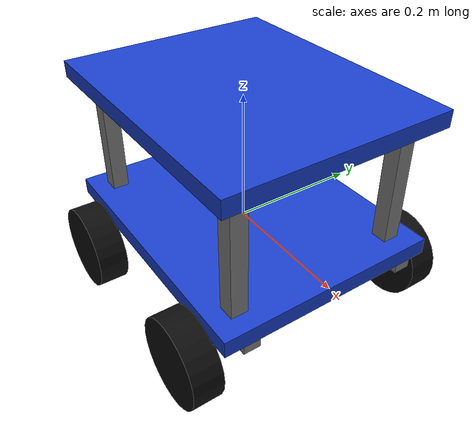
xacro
<?xml version="1.0"?>
<robot xmlns:xacro="http://www.ros.org/wiki/xacro" name="agv">

  <!-- ==================== MATERIALS ==================== -->
  <material name="blue">
    <color rgba="0.1 0.25 0.8 1.0"/>
  </material>

  <material name="black">
    <color rgba="0.05 0.05 0.05 1.0"/>
  </material>

  <material name="grey">
    <color rgba="0.5 0.5 0.5 1.0"/>
  </material>

  <!-- ==================== BASE LINK ==================== -->
  <!--
       Gom cac thanh khung duoi va 4 tru vao base_link.
       Khong tao rieng lower_rail, lower_cross hoac support_post.
       Hinh dang khung va tru van duoc giu bang cac khoi box.
  -->

  <link name="base_link">

    <!-- Tam san duoi -->
    <visual>
      <origin xyz="0 0 0" rpy="0 0 0"/>
      <geometry>
        <box size="0.42 0.34 0.025"/>
      </geometry>
      <material name="blue"/>
    </visual>

    <collision>
      <origin xyz="0 0 0" rpy="0 0 0"/>
      <geometry>
        <box size="0.42 0.34 0.025"/>
      </geometry>
    </collision>

    <!-- Thanh khung duoi ben trai -->
    <visual>
      <origin xyz="0 0.13 -0.0125" rpy="0 0 0"/>
      <geometry>
        <box size="0.42 0.025 0.025"/>
      </geometry>
      <material name="grey"/>
    </visual>

    <collision>
      <origin xyz="0 0.13 -0.0125" rpy="0 0 0"/>
      <geometry>
        <box size="0.42 0.025 0.025"/>
      </geometry>
    </collision>

    <!-- Thanh khung duoi ben phai -->
    <visual>
      <origin xyz="0 -0.13 -0.0125" rpy="0 0 0"/>
      <geometry>
        <box size="0.42 0.025 0.025"/>
      </geometry>
      <material name="grey"/>
    </visual>

    <collision>
      <origin xyz="0 -0.13 -0.0125" rpy="0 0 0"/>
      <geometry>
        <box size="0.42 0.025 0.025"/>
      </geometry>
    </collision>

    <!-- Thanh ngang khung duoi phia truoc -->
    <visual>
      <origin xyz="0.17 0 -0.0125" rpy="0 0 0"/>
      <geometry>
        <box size="0.025 0.34 0.025"/>
      </geometry>
      <material name="grey"/>
    </visual>

    <collision>
      <origin xyz="0.17 0 -0.0125" rpy="0 0 0"/>
      <geometry>
        <box size="0.025 0.34 0.025"/>
      </geometry>
    </collision>

    <!-- Thanh ngang khung duoi phia sau -->
    <visual>
      <origin xyz="-0.17 0 -0.0125" rpy="0 0 0"/>
      <geometry>
        <box size="0.025 0.34 0.025"/>
      </geometry>
      <material name="grey"/>
    </visual>

    <collision>
      <origin xyz="-0.17 0 -0.0125" rpy="0 0 0"/>
      <geometry>
        <box size="0.025 0.34 0.025"/>
      </geometry>
    </collision>

    <!-- Tru dung goc truoc ben trai -->
    <visual>
      <origin xyz="0.17 0.13 0.1025" rpy="0 0 0"/>
      <geometry>
        <box size="0.025 0.025 0.18"/>
      </geometry>
      <material name="grey"/>
    </visual>

    <collision>
      <origin xyz="0.17 0.13 0.1025" rpy="0 0 0"/>
      <geometry>
        <box size="0.025 0.025 0.18"/>
      </geometry>
    </collision>

    <!-- Tru dung goc truoc ben phai -->
    <visual>
      <origin xyz="0.17 -0.13 0.1025" rpy="0 0 0"/>
      <geometry>
        <box size="0.025 0.025 0.18"/>
      </geometry>
      <material name="grey"/>
    </visual>

    <collision>
      <origin xyz="0.17 -0.13 0.1025" rpy="0 0 0"/>
      <geometry>
        <box size="0.025 0.025 0.18"/>
      </geometry>
    </collision>

    <!-- Tru dung goc sau ben trai -->
    <visual>
      <origin xyz="-0.17 0.13 0.1025" rpy="0 0 0"/>
      <geometry>
        <box size="0.025 0.025 0.18"/>
      </geometry>
      <material name="grey"/>
    </visual>

    <collision>
      <origin xyz="-0.17 0.13 0.1025" rpy="0 0 0"/>
      <geometry>
        <box size="0.025 0.025 0.18"/>
      </geometry>
    </collision>

    <!-- Tru dung goc sau ben phai -->
    <visual>
      <origin xyz="-0.17 -0.13 0.1025" rpy="0 0 0"/>
      <geometry>
        <box size="0.025 0.025 0.18"/>
      </geometry>
      <material name="grey"/>
    </visual>

    <collision>
      <origin xyz="-0.17 -0.13 0.1025" rpy="0 0 0"/>
      <geometry>
        <box size="0.025 0.025 0.18"/>
      </geometry>
    </collision>

    <!-- Khoi luong va mo-men quan tinh cua khung duoi -->
    <inertial>
      <origin xyz="0 0 0.02" rpy="0 0 0"/>
      <mass value="5.6"/>
      <inertia
        ixx="0.055"
        ixy="0.0"
        ixz="0.0"
        iyy="0.075"
        iyz="0.0"
        izz="0.12"/>
    </inertial>

  </link>

  <!-- ==================== UPPER DECK ==================== -->
  <!-- San tren duoc giu thanh mot link rieng -->

  <link name="upper_deck">

    <visual>
      <origin xyz="0 0 0" rpy="0 0 0"/>
      <geometry>
        <box size="0.42 0.34 0.025"/>
      </geometry>
      <material name="blue"/>
    </visual>

    <collision>
      <origin xyz="0 0 0" rpy="0 0 0"/>
      <geometry>
        <box size="0.42 0.34 0.025"/>
      </geometry>
    </collision>

    <inertial>
      <origin xyz="0 0 0" rpy="0 0 0"/>
      <mass value="2.0"/>
      <inertia
        ixx="0.019"
        ixy="0.0"
        ixz="0.0"
        iyy="0.031"
        iyz="0.0"
        izz="0.045"/>
    </inertial>

  </link>

  <!-- Gan san tren vao khung duoi -->
  <joint name="upper_deck_joint" type="fixed">
    <parent link="base_link"/>
    <child link="upper_deck"/>
    <origin xyz="0 0 0.205" rpy="0 0 0"/>
  </joint>

  <!-- ==================== WHEEL MACRO ==================== -->

  <xacro:macro name="wheel" params="name x y side">

    <link name="${name}_wheel">
      <visual>
        <origin xyz="0 0 0" rpy="0 0 0"/>
        <geometry>
          <cylinder radius="0.065" length="0.045"/>
        </geometry>
        <material name="black"/>
      </visual>

      <collision>
        <origin xyz="0 0 0" rpy="0 0 0"/>
        <geometry>
          <cylinder radius="0.065" length="0.045"/>
        </geometry>
      </collision>

      <inertial>
        <origin xyz="0 0 0" rpy="0 0 0"/>
        <mass value="0.5"/>
        <inertia
          ixx="0.0012"
          ixy="0.0"
          ixz="0.0"
          iyy="0.0012"
          iyz="0.0"
          izz="0.0012"/>
      </inertial>
    </link>

    <joint name="${name}_wheel_joint" type="continuous">
      <parent link="base_link"/>
      <child link="${name}_wheel"/>
      <origin xyz="${x} ${y} -0.065"
              rpy="${side == 'left' and '-1.57079632679' or '1.57079632679'} 0 0"/>
      <axis xyz="0 0 ${side == 'left' and '1' or '-1'}"/>
    </joint>

  </xacro:macro>

  <!-- 4 banh: z local huong ra ngoai, truc quay vat ly cung huong +Y -->
  <xacro:wheel name="lf" x="0.14" y="0.19" side="left"/>
  <xacro:wheel name="rf" x="0.14" y="-0.19" side="right"/>
  <xacro:wheel name="lr" x="-0.14" y="0.19" side="left"/>
  <xacro:wheel name="rr" x="-0.14" y="-0.19" side="right"/>

</robot>
